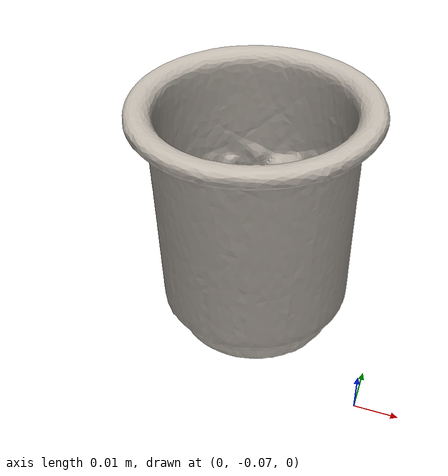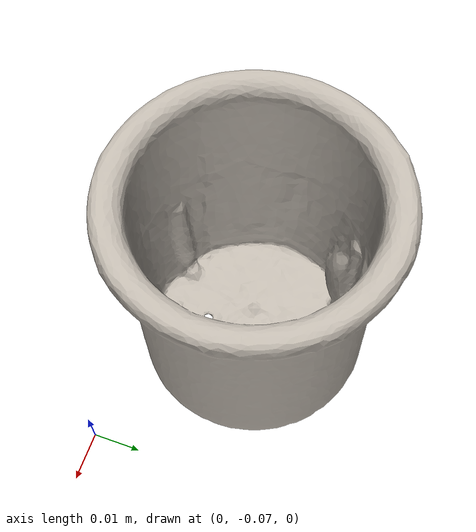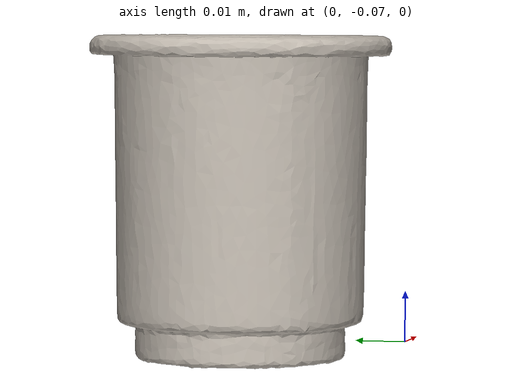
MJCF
<mujoco model="cups_a">
  <compiler angle="radian" meshdir="assets" texturedir="assets"/>
    <default>
        <default class="ycb_col">
            <geom contype="1" conaffinity="1" group="3" rgba=".4 .5 .6 1"/>
        </default>
        <default class="ycb_viz">
            <geom contype="0" conaffinity="0" type="mesh" mass="0"/>
        </default>
    </default>
  <asset>
    <texture type="2d" name="a_cups_tex" file="texture_map.png"/>
    <material name="a_cups_mat" texture="a_cups_tex" specular="0.5" shininess="0.5"/>
    <mesh file="textured.obj" name="a_cups"/>
    <mesh file="textured_collision_0.obj" name="a_cups_collision_0"/>
    <mesh file="textured_collision_1.obj" name="a_cups_collision_1"/>
    <mesh file="textured_collision_2.obj" name="a_cups_collision_2"/>
    <mesh file="textured_collision_3.obj" name="a_cups_collision_3"/>
    <mesh file="textured_collision_4.obj" name="a_cups_collision_4"/>
    <mesh file="textured_collision_5.obj" name="a_cups_collision_5"/>
    <mesh file="textured_collision_6.obj" name="a_cups_collision_6"/>
    <mesh file="textured_collision_7.obj" name="a_cups_collision_7"/>
    <mesh file="textured_collision_8.obj" name="a_cups_collision_8"/>
    <mesh file="textured_collision_9.obj" name="a_cups_collision_9"/>
    <mesh file="textured_collision_10.obj" name="a_cups_collision_10"/>
    <mesh file="textured_collision_11.obj" name="a_cups_collision_11"/>
    <mesh file="textured_collision_12.obj" name="a_cups_collision_12"/>
    <mesh file="textured_collision_13.obj" name="a_cups_collision_13"/>
    <mesh file="textured_collision_14.obj" name="a_cups_collision_14"/>
    <mesh file="textured_collision_15.obj" name="a_cups_collision_15"/>
    <mesh file="textured_collision_16.obj" name="a_cups_collision_16"/>
    <mesh file="textured_collision_17.obj" name="a_cups_collision_17"/>
    <mesh file="textured_collision_18.obj" name="a_cups_collision_18"/>
    <mesh file="textured_collision_19.obj" name="a_cups_collision_19"/>
    <mesh file="textured_collision_20.obj" name="a_cups_collision_20"/>
    <mesh file="textured_collision_21.obj" name="a_cups_collision_21"/>
    <mesh file="textured_collision_22.obj" name="a_cups_collision_22"/>
    <mesh file="textured_collision_23.obj" name="a_cups_collision_23"/>
    <mesh file="textured_collision_24.obj" name="a_cups_collision_24"/>
    <mesh file="textured_collision_25.obj" name="a_cups_collision_25"/>
    <mesh file="textured_collision_26.obj" name="a_cups_collision_26"/>
    <mesh file="textured_collision_27.obj" name="a_cups_collision_27"/>
    <mesh file="textured_collision_28.obj" name="a_cups_collision_28"/>
    <mesh file="textured_collision_29.obj" name="a_cups_collision_29"/>
    <mesh file="textured_collision_30.obj" name="a_cups_collision_30"/>
    <mesh file="textured_collision_31.obj" name="a_cups_collision_31"/>
    <mesh file="textured_collision_32.obj" name="a_cups_collision_32"/>
    <mesh file="textured_collision_33.obj" name="a_cups_collision_33"/>
    <mesh file="textured_collision_34.obj" name="a_cups_collision_34"/>
    <mesh file="textured_collision_35.obj" name="a_cups_collision_35"/>
    <mesh file="textured_collision_36.obj" name="a_cups_collision_36"/>
    <mesh file="textured_collision_37.obj" name="a_cups_collision_37"/>
    <mesh file="textured_collision_38.obj" name="a_cups_collision_38"/>
    <mesh file="textured_collision_39.obj" name="a_cups_collision_39"/>
    <mesh file="textured_collision_40.obj" name="a_cups_collision_40"/>
    <mesh file="textured_collision_41.obj" name="a_cups_collision_41"/>
    <mesh file="textured_collision_42.obj" name="a_cups_collision_42"/>
    <mesh file="textured_collision_43.obj" name="a_cups_collision_43"/>
    <mesh file="textured_collision_44.obj" name="a_cups_collision_44"/>
    <mesh file="textured_collision_45.obj" name="a_cups_collision_45"/>
    <mesh file="textured_collision_46.obj" name="a_cups_collision_46"/>
    <mesh file="textured_collision_47.obj" name="a_cups_collision_47"/>
    <mesh file="textured_collision_48.obj" name="a_cups_collision_48"/>
    <mesh file="textured_collision_49.obj" name="a_cups_collision_49"/>
    <mesh file="textured_collision_50.obj" name="a_cups_collision_50"/>
    <mesh file="textured_collision_51.obj" name="a_cups_collision_51"/>
  </asset>
  <worldbody>
      <geom material="a_cups_mat" mesh="a_cups" class="ycb_viz"/>
      <geom mesh="a_cups_collision_0" class="ycb_col" conaffinity="1" condim="4" friction="0.1 0.1 0.1" mass="0.0001507993689045571" rgba="1 1 1 1" solimp="0.99 0.99 0.01" solref=".001 0.1" type="mesh" group="3"/>
      <geom mesh="a_cups_collision_1" class="ycb_col" conaffinity="1" condim="4" friction="0.1 0.1 0.1" mass="0.00019804003725982052" rgba="1 1 1 1" solimp="0.99 0.99 0.01" solref=".001 0.1" type="mesh" group="3"/>
      <geom mesh="a_cups_collision_2" class="ycb_col" conaffinity="1" condim="4" friction="0.1 0.1 0.1" mass="0.00011871981972506307" rgba="1 1 1 1" solimp="0.99 0.99 0.01" solref=".001 0.1" type="mesh" group="3"/>
      <geom mesh="a_cups_collision_3" class="ycb_col" conaffinity="1" condim="4" friction="0.1 0.1 0.1" mass="0.00020509879330046316" rgba="1 1 1 1" solimp="0.99 0.99 0.01" solref=".001 0.1" type="mesh" group="3"/>
      <geom mesh="a_cups_collision_4" class="ycb_col" conaffinity="1" condim="4" friction="0.1 0.1 0.1" mass="0.0001388941747710582" rgba="1 1 1 1" solimp="0.99 0.99 0.01" solref=".001 0.1" type="mesh" group="3"/>
      <geom mesh="a_cups_collision_5" class="ycb_col" conaffinity="1" condim="4" friction="0.1 0.1 0.1" mass="9.057953337306613e-05" rgba="1 1 1 1" solimp="0.99 0.99 0.01" solref=".001 0.1" type="mesh" group="3"/>
      <geom mesh="a_cups_collision_6" class="ycb_col" conaffinity="1" condim="4" friction="0.1 0.1 0.1" mass="0.00014356567444382757" rgba="1 1 1 1" solimp="0.99 0.99 0.01" solref=".001 0.1" type="mesh" group="3"/>
      <geom mesh="a_cups_collision_7" class="ycb_col" conaffinity="1" condim="4" friction="0.1 0.1 0.1" mass="4.1810582049792046e-05" rgba="1 1 1 1" solimp="0.99 0.99 0.01" solref=".001 0.1" type="mesh" group="3"/>
      <geom mesh="a_cups_collision_8" class="ycb_col" conaffinity="1" condim="4" friction="0.1 0.1 0.1" mass="0.00013544281955928689" rgba="1 1 1 1" solimp="0.99 0.99 0.01" solref=".001 0.1" type="mesh" group="3"/>
      <geom mesh="a_cups_collision_9" class="ycb_col" conaffinity="1" condim="4" friction="0.1 0.1 0.1" mass="3.884927564183045e-05" rgba="1 1 1 1" solimp="0.99 0.99 0.01" solref=".001 0.1" type="mesh" group="3"/>
      <geom mesh="a_cups_collision_10" class="ycb_col" conaffinity="1" condim="4" friction="0.1 0.1 0.1" mass="0.00015278063747394273" rgba="1 1 1 1" solimp="0.99 0.99 0.01" solref=".001 0.1" type="mesh" group="3"/>
      <geom mesh="a_cups_collision_11" class="ycb_col" conaffinity="1" condim="4" friction="0.1 0.1 0.1" mass="8.617475484841418e-05" rgba="1 1 1 1" solimp="0.99 0.99 0.01" solref=".001 0.1" type="mesh" group="3"/>
      <geom mesh="a_cups_collision_12" class="ycb_col" conaffinity="1" condim="4" friction="0.1 0.1 0.1" mass="9.433816582070353e-05" rgba="1 1 1 1" solimp="0.99 0.99 0.01" solref=".001 0.1" type="mesh" group="3"/>
      <geom mesh="a_cups_collision_13" class="ycb_col" conaffinity="1" condim="4" friction="0.1 0.1 0.1" mass="0.00010740367360055558" rgba="1 1 1 1" solimp="0.99 0.99 0.01" solref=".001 0.1" type="mesh" group="3"/>
      <geom mesh="a_cups_collision_14" class="ycb_col" conaffinity="1" condim="4" friction="0.1 0.1 0.1" mass="0.0005482910916209895" rgba="1 1 1 1" solimp="0.99 0.99 0.01" solref=".001 0.1" type="mesh" group="3"/>
      <geom mesh="a_cups_collision_15" class="ycb_col" conaffinity="1" condim="4" friction="0.1 0.1 0.1" mass="0.0004946333331562389" rgba="1 1 1 1" solimp="0.99 0.99 0.01" solref=".001 0.1" type="mesh" group="3"/>
      <geom mesh="a_cups_collision_16" class="ycb_col" conaffinity="1" condim="4" friction="0.1 0.1 0.1" mass="0.00038069060681139496" rgba="1 1 1 1" solimp="0.99 0.99 0.01" solref=".001 0.1" type="mesh" group="3"/>
      <geom mesh="a_cups_collision_17" class="ycb_col" conaffinity="1" condim="4" friction="0.1 0.1 0.1" mass="0.00047297493572802173" rgba="1 1 1 1" solimp="0.99 0.99 0.01" solref=".001 0.1" type="mesh" group="3"/>
      <geom mesh="a_cups_collision_18" class="ycb_col" conaffinity="1" condim="4" friction="0.1 0.1 0.1" mass="0.0007496969790226838" rgba="1 1 1 1" solimp="0.99 0.99 0.01" solref=".001 0.1" type="mesh" group="3"/>
      <geom mesh="a_cups_collision_19" class="ycb_col" conaffinity="1" condim="4" friction="0.1 0.1 0.1" mass="0.0004129835054159646" rgba="1 1 1 1" solimp="0.99 0.99 0.01" solref=".001 0.1" type="mesh" group="3"/>
      <geom mesh="a_cups_collision_20" class="ycb_col" conaffinity="1" condim="4" friction="0.1 0.1 0.1" mass="5.989452131305746e-05" rgba="1 1 1 1" solimp="0.99 0.99 0.01" solref=".001 0.1" type="mesh" group="3"/>
      <geom mesh="a_cups_collision_21" class="ycb_col" conaffinity="1" condim="4" friction="0.1 0.1 0.1" mass="6.812175881595303e-05" rgba="1 1 1 1" solimp="0.99 0.99 0.01" solref=".001 0.1" type="mesh" group="3"/>
      <geom mesh="a_cups_collision_22" class="ycb_col" conaffinity="1" condim="4" friction="0.1 0.1 0.1" mass="0.0001649884002606577" rgba="1 1 1 1" solimp="0.99 0.99 0.01" solref=".001 0.1" type="mesh" group="3"/>
      <geom mesh="a_cups_collision_23" class="ycb_col" conaffinity="1" condim="4" friction="0.1 0.1 0.1" mass="0.0005540919569204591" rgba="1 1 1 1" solimp="0.99 0.99 0.01" solref=".001 0.1" type="mesh" group="3"/>
      <geom mesh="a_cups_collision_24" class="ycb_col" conaffinity="1" condim="4" friction="0.1 0.1 0.1" mass="0.00048472859112703385" rgba="1 1 1 1" solimp="0.99 0.99 0.01" solref=".001 0.1" type="mesh" group="3"/>
      <geom mesh="a_cups_collision_25" class="ycb_col" conaffinity="1" condim="4" friction="0.1 0.1 0.1" mass="0.00021859588393455896" rgba="1 1 1 1" solimp="0.99 0.99 0.01" solref=".001 0.1" type="mesh" group="3"/>
      <geom mesh="a_cups_collision_26" class="ycb_col" conaffinity="1" condim="4" friction="0.1 0.1 0.1" mass="5.446214253899569e-05" rgba="1 1 1 1" solimp="0.99 0.99 0.01" solref=".001 0.1" type="mesh" group="3"/>
      <geom mesh="a_cups_collision_27" class="ycb_col" conaffinity="1" condim="4" friction="0.1 0.1 0.1" mass="7.691748211015542e-05" rgba="1 1 1 1" solimp="0.99 0.99 0.01" solref=".001 0.1" type="mesh" group="3"/>
      <geom mesh="a_cups_collision_28" class="ycb_col" conaffinity="1" condim="4" friction="0.1 0.1 0.1" mass="0.00011184709835325543" rgba="1 1 1 1" solimp="0.99 0.99 0.01" solref=".001 0.1" type="mesh" group="3"/>
      <geom mesh="a_cups_collision_29" class="ycb_col" conaffinity="1" condim="4" friction="0.1 0.1 0.1" mass="0.0008351318888635374" rgba="1 1 1 1" solimp="0.99 0.99 0.01" solref=".001 0.1" type="mesh" group="3"/>
      <geom mesh="a_cups_collision_30" class="ycb_col" conaffinity="1" condim="4" friction="0.1 0.1 0.1" mass="0.00020232376136441273" rgba="1 1 1 1" solimp="0.99 0.99 0.01" solref=".001 0.1" type="mesh" group="3"/>
      <geom mesh="a_cups_collision_31" class="ycb_col" conaffinity="1" condim="4" friction="0.1 0.1 0.1" mass="0.00122891791751933" rgba="1 1 1 1" solimp="0.99 0.99 0.01" solref=".001 0.1" type="mesh" group="3"/>
      <geom mesh="a_cups_collision_32" class="ycb_col" conaffinity="1" condim="4" friction="0.1 0.1 0.1" mass="0.0001405336565842332" rgba="1 1 1 1" solimp="0.99 0.99 0.01" solref=".001 0.1" type="mesh" group="3"/>
      <geom mesh="a_cups_collision_33" class="ycb_col" conaffinity="1" condim="4" friction="0.1 0.1 0.1" mass="0.00025129021604097785" rgba="1 1 1 1" solimp="0.99 0.99 0.01" solref=".001 0.1" type="mesh" group="3"/>
      <geom mesh="a_cups_collision_34" class="ycb_col" conaffinity="1" condim="4" friction="0.1 0.1 0.1" mass="0.00011352290663277649" rgba="1 1 1 1" solimp="0.99 0.99 0.01" solref=".001 0.1" type="mesh" group="3"/>
      <geom mesh="a_cups_collision_35" class="ycb_col" conaffinity="1" condim="4" friction="0.1 0.1 0.1" mass="0.00044662483249359425" rgba="1 1 1 1" solimp="0.99 0.99 0.01" solref=".001 0.1" type="mesh" group="3"/>
      <geom mesh="a_cups_collision_36" class="ycb_col" conaffinity="1" condim="4" friction="0.1 0.1 0.1" mass="0.00017186559367652024" rgba="1 1 1 1" solimp="0.99 0.99 0.01" solref=".001 0.1" type="mesh" group="3"/>
      <geom mesh="a_cups_collision_37" class="ycb_col" conaffinity="1" condim="4" friction="0.1 0.1 0.1" mass="4.25000422879547e-05" rgba="1 1 1 1" solimp="0.99 0.99 0.01" solref=".001 0.1" type="mesh" group="3"/>
      <geom mesh="a_cups_collision_38" class="ycb_col" conaffinity="1" condim="4" friction="0.1 0.1 0.1" mass="3.417195477232151e-05" rgba="1 1 1 1" solimp="0.99 0.99 0.01" solref=".001 0.1" type="mesh" group="3"/>
      <geom mesh="a_cups_collision_39" class="ycb_col" conaffinity="1" condim="4" friction="0.1 0.1 0.1" mass="5.1002151757784464e-05" rgba="1 1 1 1" solimp="0.99 0.99 0.01" solref=".001 0.1" type="mesh" group="3"/>
      <geom mesh="a_cups_collision_40" class="ycb_col" conaffinity="1" condim="4" friction="0.1 0.1 0.1" mass="3.7714967941493726e-05" rgba="1 1 1 1" solimp="0.99 0.99 0.01" solref=".001 0.1" type="mesh" group="3"/>
      <geom mesh="a_cups_collision_41" class="ycb_col" conaffinity="1" condim="4" friction="0.1 0.1 0.1" mass="0.00015243823813166325" rgba="1 1 1 1" solimp="0.99 0.99 0.01" solref=".001 0.1" type="mesh" group="3"/>
      <geom mesh="a_cups_collision_42" class="ycb_col" conaffinity="1" condim="4" friction="0.1 0.1 0.1" mass="0.00011853413325846118" rgba="1 1 1 1" solimp="0.99 0.99 0.01" solref=".001 0.1" type="mesh" group="3"/>
      <geom mesh="a_cups_collision_43" class="ycb_col" conaffinity="1" condim="4" friction="0.1 0.1 0.1" mass="0.0003168687218882401" rgba="1 1 1 1" solimp="0.99 0.99 0.01" solref=".001 0.1" type="mesh" group="3"/>
      <geom mesh="a_cups_collision_44" class="ycb_col" conaffinity="1" condim="4" friction="0.1 0.1 0.1" mass="0.00027745300789182623" rgba="1 1 1 1" solimp="0.99 0.99 0.01" solref=".001 0.1" type="mesh" group="3"/>
      <geom mesh="a_cups_collision_45" class="ycb_col" conaffinity="1" condim="4" friction="0.1 0.1 0.1" mass="0.0005499672943393253" rgba="1 1 1 1" solimp="0.99 0.99 0.01" solref=".001 0.1" type="mesh" group="3"/>
      <geom mesh="a_cups_collision_46" class="ycb_col" conaffinity="1" condim="4" friction="0.1 0.1 0.1" mass="0.00026554878275276056" rgba="1 1 1 1" solimp="0.99 0.99 0.01" solref=".001 0.1" type="mesh" group="3"/>
      <geom mesh="a_cups_collision_47" class="ycb_col" conaffinity="1" condim="4" friction="0.1 0.1 0.1" mass="7.517043076177945e-05" rgba="1 1 1 1" solimp="0.99 0.99 0.01" solref=".001 0.1" type="mesh" group="3"/>
      <geom mesh="a_cups_collision_48" class="ycb_col" conaffinity="1" condim="4" friction="0.1 0.1 0.1" mass="0.0001300251723010586" rgba="1 1 1 1" solimp="0.99 0.99 0.01" solref=".001 0.1" type="mesh" group="3"/>
      <geom mesh="a_cups_collision_49" class="ycb_col" conaffinity="1" condim="4" friction="0.1 0.1 0.1" mass="0.0004249490176348627" rgba="1 1 1 1" solimp="0.99 0.99 0.01" solref=".001 0.1" type="mesh" group="3"/>
      <geom mesh="a_cups_collision_50" class="ycb_col" conaffinity="1" condim="4" friction="0.1 0.1 0.1" mass="0.0003989581327449353" rgba="1 1 1 1" solimp="0.99 0.99 0.01" solref=".001 0.1" type="mesh" group="3"/>
      <geom mesh="a_cups_collision_51" class="ycb_col" conaffinity="1" condim="4" friction="0.1 0.1 0.1" mass="0.0001790715804583479" rgba="1 1 1 1" solimp="0.99 0.99 0.01" solref=".001 0.1" type="mesh" group="3"/>
  </worldbody>
</mujoco>
